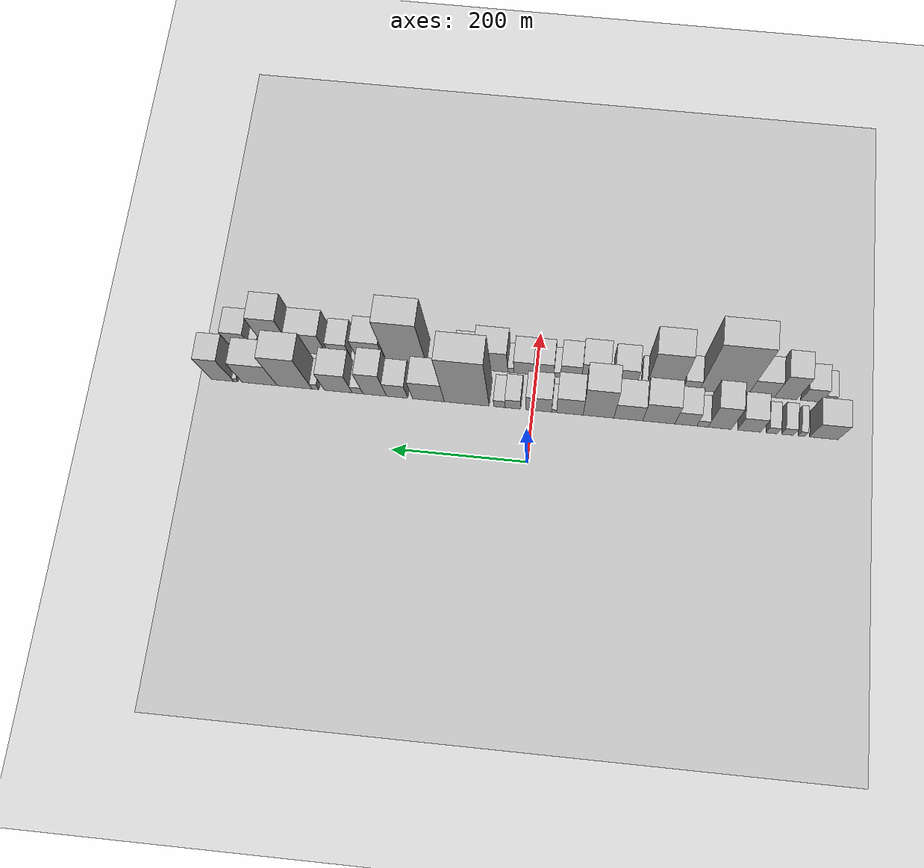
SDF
<sdf version="1.6">
 <world name="default">
  <include><name>ground_plane_1</name><uri>model://HANNAS_ground_plane</uri></include>
  <include>
   <name>ground_plane_2</name>
   <uri>model://HANNAS_ground_plane</uri>
   <pose>100 0 0  0 0 0</pose>
  </include>
  <model name="building_1">
   <static>1</static>
   <pose>100.0000 -429.0921 0 0.000000 0.000000 0.000000</pose>
   <link name="link">
    <pose>0 0 36.00 0 0 0</pose>
    <collision name="collision"><geometry><box><size>40.0000 41.8158 72.0000</size></box></geometry></collision>
    <visual name="visual">
     <cast_shadows>0</cast_shadows>
     <geometry><box><size>40.0000 41.8158 72.0000</size></box></geometry>
     <material>
      <script>
       <uri>model://HANNAS_wall/materials/scripts</uri>
       <uri>model://HANNAS_wall/materials/textures</uri>
       <name>vrc/HANNAS_wall</name>
      </script>
     </material>
    </visual>
   </link>
  </model>
  <model name="building_2">
   <static>1</static>
   <pose>100.0000 -396.2721 0 0.000000 0.000000 0.000000</pose>
   <link name="link">
    <pose>0 0 12.00 0 0 0</pose>
    <collision name="collision"><geometry><box><size>40.0000 9.8241 24.0000</size></box></geometry></collision>
    <visual name="visual">
     <cast_shadows>0</cast_shadows>
     <geometry><box><size>40.0000 9.8241 24.0000</size></box></geometry>
     <material>
      <script>
       <uri>model://HANNAS_wall/materials/scripts</uri>
       <uri>model://HANNAS_wall/materials/textures</uri>
       <name>vrc/HANNAS_wall</name>
      </script>
     </material>
    </visual>
   </link>
  </model>
  <model name="building_3">
   <static>1</static>
   <pose>100.0000 -375.5602 0 0.000000 0.000000 0.000000</pose>
   <link name="link">
    <pose>0 0 16.50 0 0 0</pose>
    <collision name="collision"><geometry><box><size>40.0000 17.5997 33.0000</size></box></geometry></collision>
    <visual name="visual">
     <cast_shadows>0</cast_shadows>
     <geometry><box><size>40.0000 17.5997 33.0000</size></box></geometry>
     <material>
      <script>
       <uri>model://HANNAS_wall/materials/scripts</uri>
       <uri>model://HANNAS_wall/materials/textures</uri>
       <name>vrc/HANNAS_wall</name>
      </script>
     </material>
    </visual>
   </link>
  </model>
  <model name="building_4">
   <static>1</static>
   <pose>100.0000 -352.4405 0 0.000000 0.000000 0.000000</pose>
   <link name="link">
    <pose>0 0 15.00 0 0 0</pose>
    <collision name="collision"><geometry><box><size>40.0000 16.6397 30.0000</size></box></geometry></collision>
    <visual name="visual">
     <cast_shadows>0</cast_shadows>
     <geometry><box><size>40.0000 16.6397 30.0000</size></box></geometry>
     <material>
      <script>
       <uri>model://HANNAS_wall/materials/scripts</uri>
       <uri>model://HANNAS_wall/materials/textures</uri>
       <name>vrc/HANNAS_wall</name>
      </script>
     </material>
    </visual>
   </link>
  </model>
  <model name="building_5">
   <static>1</static>
   <pose>100.0000 -319.1062 0 0.000000 0.000000 0.000000</pose>
   <link name="link">
    <pose>0 0 33.00 0 0 0</pose>
    <collision name="collision"><geometry><box><size>40.0000 34.0290 66.0000</size></box></geometry></collision>
    <visual name="visual">
     <cast_shadows>0</cast_shadows>
     <geometry><box><size>40.0000 34.0290 66.0000</size></box></geometry>
     <material>
      <script>
       <uri>model://HANNAS_wall/materials/scripts</uri>
       <uri>model://HANNAS_wall/materials/textures</uri>
       <name>vrc/HANNAS_wall</name>
      </script>
     </material>
    </visual>
   </link>
  </model>
  <model name="building_6">
   <static>1</static>
   <pose>100.0000 -275.9025 0 0.000000 0.000000 0.000000</pose>
   <link name="link">
    <pose>0 0 54.00 0 0 0</pose>
    <collision name="collision"><geometry><box><size>40.0000 34.3785 108.0000</size></box></geometry></collision>
    <visual name="visual">
     <cast_shadows>0</cast_shadows>
     <geometry><box><size>40.0000 34.3785 108.0000</size></box></geometry>
     <material>
      <script>
       <uri>model://HANNAS_wall/materials/scripts</uri>
       <uri>model://HANNAS_wall/materials/textures</uri>
       <name>vrc/HANNAS_wall</name>
      </script>
     </material>
    </visual>
   </link>
  </model>
  <model name="building_7">
   <static>1</static>
   <pose>100.0000 -250.4454 0 0.000000 0.000000 0.000000</pose>
   <link name="link">
    <pose>0 0 15.00 0 0 0</pose>
    <collision name="collision"><geometry><box><size>40.0000 16.5357 30.0000</size></box></geometry></collision>
    <visual name="visual">
     <cast_shadows>0</cast_shadows>
     <geometry><box><size>40.0000 16.5357 30.0000</size></box></geometry>
     <material>
      <script>
       <uri>model://HANNAS_wall/materials/scripts</uri>
       <uri>model://HANNAS_wall/materials/textures</uri>
       <name>vrc/HANNAS_wall</name>
      </script>
     </material>
    </visual>
   </link>
  </model>
  <model name="building_8">
   <static>1</static>
   <pose>100.0000 -226.0303 0 0.000000 0.000000 0.000000</pose>
   <link name="link">
    <pose>0 0 31.50 0 0 0</pose>
    <collision name="collision"><geometry><box><size>40.0000 32.2945 63.0000</size></box></geometry></collision>
    <visual name="visual">
     <cast_shadows>0</cast_shadows>
     <geometry><box><size>40.0000 32.2945 63.0000</size></box></geometry>
     <material>
      <script>
       <uri>model://HANNAS_wall/materials/scripts</uri>
       <uri>model://HANNAS_wall/materials/textures</uri>
       <name>vrc/HANNAS_wall</name>
      </script>
     </material>
    </visual>
   </link>
  </model>
  <model name="building_9">
   <static>1</static>
   <pose>100.0000 -186.0973 0 0.000000 0.000000 0.000000</pose>
   <link name="link">
    <pose>0 0 45.00 0 0 0</pose>
    <collision name="collision"><geometry><box><size>40.0000 47.5716 90.0000</size></box></geometry></collision>
    <visual name="visual">
     <cast_shadows>0</cast_shadows>
     <geometry><box><size>40.0000 47.5716 90.0000</size></box></geometry>
     <material>
      <script>
       <uri>model://HANNAS_wall/materials/scripts</uri>
       <uri>model://HANNAS_wall/materials/textures</uri>
       <name>vrc/HANNAS_wall</name>
      </script>
     </material>
    </visual>
   </link>
  </model>
  <model name="building_10">
   <static>1</static>
   <pose>100.0000 -140.9595 0 0.000000 0.000000 0.000000</pose>
   <link name="link">
    <pose>0 0 36.00 0 0 0</pose>
    <collision name="collision"><geometry><box><size>40.0000 42.7038 72.0000</size></box></geometry></collision>
    <visual name="visual">
     <cast_shadows>0</cast_shadows>
     <geometry><box><size>40.0000 42.7038 72.0000</size></box></geometry>
     <material>
      <script>
       <uri>model://HANNAS_wall/materials/scripts</uri>
       <uri>model://HANNAS_wall/materials/textures</uri>
       <name>vrc/HANNAS_wall</name>
      </script>
     </material>
    </visual>
   </link>
  </model>
  <model name="building_11">
   <static>1</static>
   <pose>100.0000 -96.8485 0 0.000000 0.000000 0.000000</pose>
   <link name="link">
    <pose>0 0 66.00 0 0 0</pose>
    <collision name="collision"><geometry><box><size>40.0000 45.5182 132.0000</size></box></geometry></collision>
    <visual name="visual">
     <cast_shadows>0</cast_shadows>
     <geometry><box><size>40.0000 45.5182 132.0000</size></box></geometry>
     <material>
      <script>
       <uri>model://HANNAS_wall/materials/scripts</uri>
       <uri>model://HANNAS_wall/materials/textures</uri>
       <name>vrc/HANNAS_wall</name>
      </script>
     </material>
    </visual>
   </link>
  </model>
  <model name="building_12">
   <static>1</static>
   <pose>100.0000 -54.3622 0 0.000000 0.000000 0.000000</pose>
   <link name="link">
    <pose>0 0 37.50 0 0 0</pose>
    <collision name="collision"><geometry><box><size>40.0000 39.4545 75.0000</size></box></geometry></collision>
    <visual name="visual">
     <cast_shadows>0</cast_shadows>
     <geometry><box><size>40.0000 39.4545 75.0000</size></box></geometry>
     <material>
      <script>
       <uri>model://HANNAS_wall/materials/scripts</uri>
       <uri>model://HANNAS_wall/materials/textures</uri>
       <name>vrc/HANNAS_wall</name>
      </script>
     </material>
    </visual>
   </link>
  </model>
  <model name="building_13">
   <static>1</static>
   <pose>100.0000 -31.0646 0 0.000000 0.000000 0.000000</pose>
   <link name="link">
    <pose>0 0 7.50 0 0 0</pose>
    <collision name="collision"><geometry><box><size>40.0000 7.1406 15.0000</size></box></geometry></collision>
    <visual name="visual">
     <cast_shadows>0</cast_shadows>
     <geometry><box><size>40.0000 7.1406 15.0000</size></box></geometry>
     <material>
      <script>
       <uri>model://HANNAS_wall/materials/scripts</uri>
       <uri>model://HANNAS_wall/materials/textures</uri>
       <name>vrc/HANNAS_wall</name>
      </script>
     </material>
    </visual>
   </link>
  </model>
  <model name="building_14">
   <static>1</static>
   <pose>100.0000 -8.3946 0 0.000000 0.000000 0.000000</pose>
   <link name="link">
    <pose>0 0 33.00 0 0 0</pose>
    <collision name="collision"><geometry><box><size>40.0000 38.1993 66.0000</size></box></geometry></collision>
    <visual name="visual">
     <cast_shadows>0</cast_shadows>
     <geometry><box><size>40.0000 38.1993 66.0000</size></box></geometry>
     <material>
      <script>
       <uri>model://HANNAS_wall/materials/scripts</uri>
       <uri>model://HANNAS_wall/materials/textures</uri>
       <name>vrc/HANNAS_wall</name>
      </script>
     </material>
    </visual>
   </link>
  </model>
  <model name="building_15">
   <static>1</static>
   <pose>100.0000 30.2016 0 0.000000 0.000000 0.000000</pose>
   <link name="link">
    <pose>0 0 21.00 0 0 0</pose>
    <collision name="collision"><geometry><box><size>40.0000 22.9932 42.0000</size></box></geometry></collision>
    <visual name="visual">
     <cast_shadows>0</cast_shadows>
     <geometry><box><size>40.0000 22.9932 42.0000</size></box></geometry>
     <material>
      <script>
       <uri>model://HANNAS_wall/materials/scripts</uri>
       <uri>model://HANNAS_wall/materials/textures</uri>
       <name>vrc/HANNAS_wall</name>
      </script>
     </material>
    </visual>
   </link>
  </model>
  <model name="building_16">
   <static>1</static>
   <pose>100.0000 50.1618 0 0.000000 0.000000 0.000000</pose>
   <link name="link">
    <pose>0 0 16.50 0 0 0</pose>
    <collision name="collision"><geometry><box><size>40.0000 16.9273 33.0000</size></box></geometry></collision>
    <visual name="visual">
     <cast_shadows>0</cast_shadows>
     <geometry><box><size>40.0000 16.9273 33.0000</size></box></geometry>
     <material>
      <script>
       <uri>model://HANNAS_wall/materials/scripts</uri>
       <uri>model://HANNAS_wall/materials/textures</uri>
       <name>vrc/HANNAS_wall</name>
      </script>
     </material>
    </visual>
   </link>
  </model>
  <model name="building_17">
   <static>1</static>
   <pose>100.0000 99.0266 0 0.000000 0.000000 0.000000</pose>
   <link name="link">
    <pose>0 0 100.50 0 0 0</pose>
    <collision name="collision"><geometry><box><size>40.0000 66.8022 201.0000</size></box></geometry></collision>
    <visual name="visual">
     <cast_shadows>0</cast_shadows>
     <geometry><box><size>40.0000 66.8022 201.0000</size></box></geometry>
     <material>
      <script>
       <uri>model://HANNAS_wall/materials/scripts</uri>
       <uri>model://HANNAS_wall/materials/textures</uri>
       <name>vrc/HANNAS_wall</name>
      </script>
     </material>
    </visual>
   </link>
  </model>
  <model name="building_18">
   <static>1</static>
   <pose>100.0000 156.2179 0 0.000000 0.000000 0.000000</pose>
   <link name="link">
    <pose>0 0 40.50 0 0 0</pose>
    <collision name="collision"><geometry><box><size>40.0000 47.5804 81.0000</size></box></geometry></collision>
    <visual name="visual">
     <cast_shadows>0</cast_shadows>
     <geometry><box><size>40.0000 47.5804 81.0000</size></box></geometry>
     <material>
      <script>
       <uri>model://HANNAS_wall/materials/scripts</uri>
       <uri>model://HANNAS_wall/materials/textures</uri>
       <name>vrc/HANNAS_wall</name>
      </script>
     </material>
    </visual>
   </link>
  </model>
  <model name="building_19">
   <static>1</static>
   <pose>100.0000 203.0638 0 0.000000 0.000000 0.000000</pose>
   <link name="link">
    <pose>0 0 30.00 0 0 0</pose>
    <collision name="collision"><geometry><box><size>40.0000 32.1115 60.0000</size></box></geometry></collision>
    <visual name="visual">
     <cast_shadows>0</cast_shadows>
     <geometry><box><size>40.0000 32.1115 60.0000</size></box></geometry>
     <material>
      <script>
       <uri>model://HANNAS_wall/materials/scripts</uri>
       <uri>model://HANNAS_wall/materials/textures</uri>
       <name>vrc/HANNAS_wall</name>
      </script>
     </material>
    </visual>
   </link>
  </model>
  <model name="building_20">
   <static>1</static>
   <pose>100.0000 236.6242 0 0.000000 0.000000 0.000000</pose>
   <link name="link">
    <pose>0 0 49.50 0 0 0</pose>
    <collision name="collision"><geometry><box><size>40.0000 35.0094 99.0000</size></box></geometry></collision>
    <visual name="visual">
     <cast_shadows>0</cast_shadows>
     <geometry><box><size>40.0000 35.0094 99.0000</size></box></geometry>
     <material>
      <script>
       <uri>model://HANNAS_wall/materials/scripts</uri>
       <uri>model://HANNAS_wall/materials/textures</uri>
       <name>vrc/HANNAS_wall</name>
      </script>
     </material>
    </visual>
   </link>
  </model>
  <model name="building_21">
   <static>1</static>
   <pose>100.0000 262.3423 0 0.000000 0.000000 0.000000</pose>
   <link name="link">
    <pose>0 0 15.00 0 0 0</pose>
    <collision name="collision"><geometry><box><size>40.0000 16.4268 30.0000</size></box></geometry></collision>
    <visual name="visual">
     <cast_shadows>0</cast_shadows>
     <geometry><box><size>40.0000 16.4268 30.0000</size></box></geometry>
     <material>
      <script>
       <uri>model://HANNAS_wall/materials/scripts</uri>
       <uri>model://HANNAS_wall/materials/textures</uri>
       <name>vrc/HANNAS_wall</name>
      </script>
     </material>
    </visual>
   </link>
  </model>
  <model name="building_22">
   <static>1</static>
   <pose>100.0000 291.4693 0 0.000000 0.000000 0.000000</pose>
   <link name="link">
    <pose>0 0 40.50 0 0 0</pose>
    <collision name="collision"><geometry><box><size>40.0000 41.8271 81.0000</size></box></geometry></collision>
    <visual name="visual">
     <cast_shadows>0</cast_shadows>
     <geometry><box><size>40.0000 41.8271 81.0000</size></box></geometry>
     <material>
      <script>
       <uri>model://HANNAS_wall/materials/scripts</uri>
       <uri>model://HANNAS_wall/materials/textures</uri>
       <name>vrc/HANNAS_wall</name>
      </script>
     </material>
    </visual>
   </link>
  </model>
  <model name="building_23">
   <static>1</static>
   <pose>100.0000 325.5681 0 0.000000 0.000000 0.000000</pose>
   <link name="link">
    <pose>0 0 12.00 0 0 0</pose>
    <collision name="collision"><geometry><box><size>40.0000 10.3706 24.0000</size></box></geometry></collision>
    <visual name="visual">
     <cast_shadows>0</cast_shadows>
     <geometry><box><size>40.0000 10.3706 24.0000</size></box></geometry>
     <material>
      <script>
       <uri>model://HANNAS_wall/materials/scripts</uri>
       <uri>model://HANNAS_wall/materials/textures</uri>
       <name>vrc/HANNAS_wall</name>
      </script>
     </material>
    </visual>
   </link>
  </model>
  <model name="building_24">
   <static>1</static>
   <pose>100.0000 356.8630 0 0.000000 0.000000 0.000000</pose>
   <link name="link">
    <pose>0 0 67.50 0 0 0</pose>
    <collision name="collision"><geometry><box><size>40.0000 52.2193 135.0000</size></box></geometry></collision>
    <visual name="visual">
     <cast_shadows>0</cast_shadows>
     <geometry><box><size>40.0000 52.2193 135.0000</size></box></geometry>
     <material>
      <script>
       <uri>model://HANNAS_wall/materials/scripts</uri>
       <uri>model://HANNAS_wall/materials/textures</uri>
       <name>vrc/HANNAS_wall</name>
      </script>
     </material>
    </visual>
   </link>
  </model>
  <model name="building_25">
   <static>1</static>
   <pose>100.0000 409.4507 0 0.000000 0.000000 0.000000</pose>
   <link name="link">
    <pose>0 0 45.00 0 0 0</pose>
    <collision name="collision"><geometry><box><size>40.0000 52.9560 90.0000</size></box></geometry></collision>
    <visual name="visual">
     <cast_shadows>0</cast_shadows>
     <geometry><box><size>40.0000 52.9560 90.0000</size></box></geometry>
     <material>
      <script>
       <uri>model://HANNAS_wall/materials/scripts</uri>
       <uri>model://HANNAS_wall/materials/textures</uri>
       <name>vrc/HANNAS_wall</name>
      </script>
     </material>
    </visual>
   </link>
  </model>
  <model name="building_26">
   <static>1</static>
   <pose>100.0000 445.1464 0 0.000000 0.000000 0.000000</pose>
   <link name="link">
    <pose>0 0 7.50 0 0 0</pose>
    <collision name="collision"><geometry><box><size>40.0000 6.4355 15.0000</size></box></geometry></collision>
    <visual name="visual">
     <cast_shadows>0</cast_shadows>
     <geometry><box><size>40.0000 6.4355 15.0000</size></box></geometry>
     <material>
      <script>
       <uri>model://HANNAS_wall/materials/scripts</uri>
       <uri>model://HANNAS_wall/materials/textures</uri>
       <name>vrc/HANNAS_wall</name>
      </script>
     </material>
    </visual>
   </link>
  </model>
  <model name="building_27">
   <static>1</static>
   <pose>100.0000 465.2666 0 0.000000 0.000000 0.000000</pose>
   <link name="link">
    <pose>0 0 49.50 0 0 0</pose>
    <collision name="collision"><geometry><box><size>40.0000 33.8049 99.0000</size></box></geometry></collision>
    <visual name="visual">
     <cast_shadows>0</cast_shadows>
     <geometry><box><size>40.0000 33.8049 99.0000</size></box></geometry>
     <material>
      <script>
       <uri>model://HANNAS_wall/materials/scripts</uri>
       <uri>model://HANNAS_wall/materials/textures</uri>
       <name>vrc/HANNAS_wall</name>
      </script>
     </material>
    </visual>
   </link>
  </model>
  <model name="building_28">
   <static>1</static>
   <pose>155.0000 -432.4684 0 0.000000 0.000000 0.000000</pose>
   <link name="link">
    <pose>0 0 16.50 0 0 0</pose>
    <collision name="collision"><geometry><box><size>40.0000 17.0632 33.0000</size></box></geometry></collision>
    <visual name="visual">
     <cast_shadows>0</cast_shadows>
     <geometry><box><size>40.0000 17.0632 33.0000</size></box></geometry>
     <material>
      <script>
       <uri>model://HANNAS_wall/materials/scripts</uri>
       <uri>model://HANNAS_wall/materials/textures</uri>
       <name>vrc/HANNAS_wall</name>
      </script>
     </material>
    </visual>
   </link>
  </model>
  <model name="building_29">
   <static>1</static>
   <pose>155.0000 -408.6887 0 0.000000 0.000000 0.000000</pose>
   <link name="link">
    <pose>0 0 28.50 0 0 0</pose>
    <collision name="collision"><geometry><box><size>40.0000 30.4962 57.0000</size></box></geometry></collision>
    <visual name="visual">
     <cast_shadows>0</cast_shadows>
     <geometry><box><size>40.0000 30.4962 57.0000</size></box></geometry>
     <material>
      <script>
       <uri>model://HANNAS_wall/materials/scripts</uri>
       <uri>model://HANNAS_wall/materials/textures</uri>
       <name>vrc/HANNAS_wall</name>
      </script>
     </material>
    </visual>
   </link>
  </model>
  <model name="building_30">
   <static>1</static>
   <pose>155.0000 -370.6630 0 0.000000 0.000000 0.000000</pose>
   <link name="link">
    <pose>0 0 52.50 0 0 0</pose>
    <collision name="collision"><geometry><box><size>40.0000 33.5551 105.0000</size></box></geometry></collision>
    <visual name="visual">
     <cast_shadows>0</cast_shadows>
     <geometry><box><size>40.0000 33.5551 105.0000</size></box></geometry>
     <material>
      <script>
       <uri>model://HANNAS_wall/materials/scripts</uri>
       <uri>model://HANNAS_wall/materials/textures</uri>
       <name>vrc/HANNAS_wall</name>
      </script>
     </material>
    </visual>
   </link>
  </model>
  <model name="building_31">
   <static>1</static>
   <pose>155.0000 -334.3735 0 0.000000 0.000000 0.000000</pose>
   <link name="link">
    <pose>0 0 36.00 0 0 0</pose>
    <collision name="collision"><geometry><box><size>40.0000 39.0240 72.0000</size></box></geometry></collision>
    <visual name="visual">
     <cast_shadows>0</cast_shadows>
     <geometry><box><size>40.0000 39.0240 72.0000</size></box></geometry>
     <material>
      <script>
       <uri>model://HANNAS_wall/materials/scripts</uri>
       <uri>model://HANNAS_wall/materials/textures</uri>
       <name>vrc/HANNAS_wall</name>
      </script>
     </material>
    </visual>
   </link>
  </model>
  <model name="building_32">
   <static>1</static>
   <pose>155.0000 -278.8919 0 0.000000 0.000000 0.000000</pose>
   <link name="link">
    <pose>0 0 105.00 0 0 0</pose>
    <collision name="collision"><geometry><box><size>40.0000 71.9391 210.0000</size></box></geometry></collision>
    <visual name="visual">
     <cast_shadows>0</cast_shadows>
     <geometry><box><size>40.0000 71.9391 210.0000</size></box></geometry>
     <material>
      <script>
       <uri>model://HANNAS_wall/materials/scripts</uri>
       <uri>model://HANNAS_wall/materials/textures</uri>
       <name>vrc/HANNAS_wall</name>
      </script>
     </material>
    </visual>
   </link>
  </model>
  <model name="building_33">
   <static>1</static>
   <pose>155.0000 -230.7251 0 0.000000 0.000000 0.000000</pose>
   <link name="link">
    <pose>0 0 21.00 0 0 0</pose>
    <collision name="collision"><geometry><box><size>40.0000 24.3945 42.0000</size></box></geometry></collision>
    <visual name="visual">
     <cast_shadows>0</cast_shadows>
     <geometry><box><size>40.0000 24.3945 42.0000</size></box></geometry>
     <material>
      <script>
       <uri>model://HANNAS_wall/materials/scripts</uri>
       <uri>model://HANNAS_wall/materials/textures</uri>
       <name>vrc/HANNAS_wall</name>
      </script>
     </material>
    </visual>
   </link>
  </model>
  <model name="building_34">
   <static>1</static>
   <pose>155.0000 -189.9824 0 0.000000 0.000000 0.000000</pose>
   <link name="link">
    <pose>0 0 75.00 0 0 0</pose>
    <collision name="collision"><geometry><box><size>40.0000 51.0908 150.0000</size></box></geometry></collision>
    <visual name="visual">
     <cast_shadows>0</cast_shadows>
     <geometry><box><size>40.0000 51.0908 150.0000</size></box></geometry>
     <material>
      <script>
       <uri>model://HANNAS_wall/materials/scripts</uri>
       <uri>model://HANNAS_wall/materials/textures</uri>
       <name>vrc/HANNAS_wall</name>
      </script>
     </material>
    </visual>
   </link>
  </model>
  <model name="building_35">
   <static>1</static>
   <pose>155.0000 -160.1794 0 0.000000 0.000000 0.000000</pose>
   <link name="link">
    <pose>0 0 10.50 0 0 0</pose>
    <collision name="collision"><geometry><box><size>40.0000 8.5153 21.0000</size></box></geometry></collision>
    <visual name="visual">
     <cast_shadows>0</cast_shadows>
     <geometry><box><size>40.0000 8.5153 21.0000</size></box></geometry>
     <material>
      <script>
       <uri>model://HANNAS_wall/materials/scripts</uri>
       <uri>model://HANNAS_wall/materials/textures</uri>
       <name>vrc/HANNAS_wall</name>
      </script>
     </material>
    </visual>
   </link>
  </model>
  <model name="building_36">
   <static>1</static>
   <pose>155.0000 -131.8410 0 0.000000 0.000000 0.000000</pose>
   <link name="link">
    <pose>0 0 31.50 0 0 0</pose>
    <collision name="collision"><geometry><box><size>40.0000 36.1615 63.0000</size></box></geometry></collision>
    <visual name="visual">
     <cast_shadows>0</cast_shadows>
     <geometry><box><size>40.0000 36.1615 63.0000</size></box></geometry>
     <material>
      <script>
       <uri>model://HANNAS_wall/materials/scripts</uri>
       <uri>model://HANNAS_wall/materials/textures</uri>
       <name>vrc/HANNAS_wall</name>
      </script>
     </material>
    </visual>
   </link>
  </model>
  <model name="building_37">
   <static>1</static>
   <pose>155.0000 -86.7872 0 0.000000 0.000000 0.000000</pose>
   <link name="link">
    <pose>0 0 36.00 0 0 0</pose>
    <collision name="collision"><geometry><box><size>40.0000 39.9462 72.0000</size></box></geometry></collision>
    <visual name="visual">
     <cast_shadows>0</cast_shadows>
     <geometry><box><size>40.0000 39.9462 72.0000</size></box></geometry>
     <material>
      <script>
       <uri>model://HANNAS_wall/materials/scripts</uri>
       <uri>model://HANNAS_wall/materials/textures</uri>
       <name>vrc/HANNAS_wall</name>
      </script>
     </material>
    </visual>
   </link>
  </model>
  <model name="building_38">
   <static>1</static>
   <pose>155.0000 -51.1200 0 0.000000 0.000000 0.000000</pose>
   <link name="link">
    <pose>0 0 28.50 0 0 0</pose>
    <collision name="collision"><geometry><box><size>40.0000 31.3882 57.0000</size></box></geometry></collision>
    <visual name="visual">
     <cast_shadows>0</cast_shadows>
     <geometry><box><size>40.0000 31.3882 57.0000</size></box></geometry>
     <material>
      <script>
       <uri>model://HANNAS_wall/materials/scripts</uri>
       <uri>model://HANNAS_wall/materials/textures</uri>
       <name>vrc/HANNAS_wall</name>
      </script>
     </material>
    </visual>
   </link>
  </model>
  <model name="building_39">
   <static>1</static>
   <pose>155.0000 -30.4448 0 0.000000 0.000000 0.000000</pose>
   <link name="link">
    <pose>0 0 10.50 0 0 0</pose>
    <collision name="collision"><geometry><box><size>40.0000 9.9621 21.0000</size></box></geometry></collision>
    <visual name="visual">
     <cast_shadows>0</cast_shadows>
     <geometry><box><size>40.0000 9.9621 21.0000</size></box></geometry>
     <material>
      <script>
       <uri>model://HANNAS_wall/materials/scripts</uri>
       <uri>model://HANNAS_wall/materials/textures</uri>
       <name>vrc/HANNAS_wall</name>
      </script>
     </material>
    </visual>
   </link>
  </model>
  <model name="building_40">
   <static>1</static>
   <pose>155.0000 -10.3241 0 0.000000 0.000000 0.000000</pose>
   <link name="link">
    <pose>0 0 27.00 0 0 0</pose>
    <collision name="collision"><geometry><box><size>40.0000 30.2793 54.0000</size></box></geometry></collision>
    <visual name="visual">
     <cast_shadows>0</cast_shadows>
     <geometry><box><size>40.0000 30.2793 54.0000</size></box></geometry>
     <material>
      <script>
       <uri>model://HANNAS_wall/materials/scripts</uri>
       <uri>model://HANNAS_wall/materials/textures</uri>
       <name>vrc/HANNAS_wall</name>
      </script>
     </material>
    </visual>
   </link>
  </model>
  <model name="building_41">
   <static>1</static>
   <pose>155.0000 19.6512 0 0.000000 0.000000 0.000000</pose>
   <link name="link">
    <pose>0 0 27.00 0 0 0</pose>
    <collision name="collision"><geometry><box><size>40.0000 29.6713 54.0000</size></box></geometry></collision>
    <visual name="visual">
     <cast_shadows>0</cast_shadows>
     <geometry><box><size>40.0000 29.6713 54.0000</size></box></geometry>
     <material>
      <script>
       <uri>model://HANNAS_wall/materials/scripts</uri>
       <uri>model://HANNAS_wall/materials/textures</uri>
       <name>vrc/HANNAS_wall</name>
      </script>
     </material>
    </visual>
   </link>
  </model>
  <model name="building_42">
   <static>1</static>
   <pose>155.0000 39.1016 0 0.000000 0.000000 0.000000</pose>
   <link name="link">
    <pose>0 0 10.50 0 0 0</pose>
    <collision name="collision"><geometry><box><size>40.0000 9.2296 21.0000</size></box></geometry></collision>
    <visual name="visual">
     <cast_shadows>0</cast_shadows>
     <geometry><box><size>40.0000 9.2296 21.0000</size></box></geometry>
     <material>
      <script>
       <uri>model://HANNAS_wall/materials/scripts</uri>
       <uri>model://HANNAS_wall/materials/textures</uri>
       <name>vrc/HANNAS_wall</name>
      </script>
     </material>
    </visual>
   </link>
  </model>
  <model name="building_43">
   <static>1</static>
   <pose>155.0000 67.7313 0 0.000000 0.000000 0.000000</pose>
   <link name="link">
    <pose>0 0 42.00 0 0 0</pose>
    <collision name="collision"><geometry><box><size>40.0000 48.0297 84.0000</size></box></geometry></collision>
    <visual name="visual">
     <cast_shadows>0</cast_shadows>
     <geometry><box><size>40.0000 48.0297 84.0000</size></box></geometry>
     <material>
      <script>
       <uri>model://HANNAS_wall/materials/scripts</uri>
       <uri>model://HANNAS_wall/materials/textures</uri>
       <name>vrc/HANNAS_wall</name>
      </script>
     </material>
    </visual>
   </link>
  </model>
  <model name="building_44">
   <static>1</static>
   <pose>155.0000 106.8159 0 0.000000 0.000000 0.000000</pose>
   <link name="link">
    <pose>0 0 27.00 0 0 0</pose>
    <collision name="collision"><geometry><box><size>40.0000 30.1397 54.0000</size></box></geometry></collision>
    <visual name="visual">
     <cast_shadows>0</cast_shadows>
     <geometry><box><size>40.0000 30.1397 54.0000</size></box></geometry>
     <material>
      <script>
       <uri>model://HANNAS_wall/materials/scripts</uri>
       <uri>model://HANNAS_wall/materials/textures</uri>
       <name>vrc/HANNAS_wall</name>
      </script>
     </material>
    </visual>
   </link>
  </model>
  <model name="building_45">
   <static>1</static>
   <pose>155.0000 139.8588 0 0.000000 0.000000 0.000000</pose>
   <link name="link">
    <pose>0 0 15.00 0 0 0</pose>
    <collision name="collision"><geometry><box><size>40.0000 17.9460 30.0000</size></box></geometry></collision>
    <visual name="visual">
     <cast_shadows>0</cast_shadows>
     <geometry><box><size>40.0000 17.9460 30.0000</size></box></geometry>
     <material>
      <script>
       <uri>model://HANNAS_wall/materials/scripts</uri>
       <uri>model://HANNAS_wall/materials/textures</uri>
       <name>vrc/HANNAS_wall</name>
      </script>
     </material>
    </visual>
   </link>
  </model>
  <model name="building_46">
   <static>1</static>
   <pose>155.0000 152.4405 0 0.000000 0.000000 0.000000</pose>
   <link name="link">
    <pose>0 0 9.00 0 0 0</pose>
    <collision name="collision"><geometry><box><size>40.0000 7.2175 18.0000</size></box></geometry></collision>
    <visual name="visual">
     <cast_shadows>0</cast_shadows>
     <geometry><box><size>40.0000 7.2175 18.0000</size></box></geometry>
     <material>
      <script>
       <uri>model://HANNAS_wall/materials/scripts</uri>
       <uri>model://HANNAS_wall/materials/textures</uri>
       <name>vrc/HANNAS_wall</name>
      </script>
     </material>
    </visual>
   </link>
  </model>
  <model name="building_47">
   <static>1</static>
   <pose>155.0000 196.5517 0 0.000000 0.000000 0.000000</pose>
   <link name="link">
    <pose>0 0 84.00 0 0 0</pose>
    <collision name="collision"><geometry><box><size>40.0000 61.0048 168.0000</size></box></geometry></collision>
    <visual name="visual">
     <cast_shadows>0</cast_shadows>
     <geometry><box><size>40.0000 61.0048 168.0000</size></box></geometry>
     <material>
      <script>
       <uri>model://HANNAS_wall/materials/scripts</uri>
       <uri>model://HANNAS_wall/materials/textures</uri>
       <name>vrc/HANNAS_wall</name>
      </script>
     </material>
    </visual>
   </link>
  </model>
  <model name="building_48">
   <static>1</static>
   <pose>155.0000 251.0046 0 0.000000 0.000000 0.000000</pose>
   <link name="link">
    <pose>0 0 37.50 0 0 0</pose>
    <collision name="collision"><geometry><box><size>40.0000 41.9009 75.0000</size></box></geometry></collision>
    <visual name="visual">
     <cast_shadows>0</cast_shadows>
     <geometry><box><size>40.0000 41.9009 75.0000</size></box></geometry>
     <material>
      <script>
       <uri>model://HANNAS_wall/materials/scripts</uri>
       <uri>model://HANNAS_wall/materials/textures</uri>
       <name>vrc/HANNAS_wall</name>
      </script>
     </material>
    </visual>
   </link>
  </model>
  <model name="building_49">
   <static>1</static>
   <pose>155.0000 296.3832 0 0.000000 0.000000 0.000000</pose>
   <link name="link">
    <pose>0 0 27.00 0 0 0</pose>
    <collision name="collision"><geometry><box><size>40.0000 30.8562 54.0000</size></box></geometry></collision>
    <visual name="visual">
     <cast_shadows>0</cast_shadows>
     <geometry><box><size>40.0000 30.8562 54.0000</size></box></geometry>
     <material>
      <script>
       <uri>model://HANNAS_wall/materials/scripts</uri>
       <uri>model://HANNAS_wall/materials/textures</uri>
       <name>vrc/HANNAS_wall</name>
      </script>
     </material>
    </visual>
   </link>
  </model>
  <model name="building_50">
   <static>1</static>
   <pose>155.0000 341.4058 0 0.000000 0.000000 0.000000</pose>
   <link name="link">
    <pose>0 0 42.00 0 0 0</pose>
    <collision name="collision"><geometry><box><size>40.0000 49.1891 84.0000</size></box></geometry></collision>
    <visual name="visual">
     <cast_shadows>0</cast_shadows>
     <geometry><box><size>40.0000 49.1891 84.0000</size></box></geometry>
     <material>
      <script>
       <uri>model://HANNAS_wall/materials/scripts</uri>
       <uri>model://HANNAS_wall/materials/textures</uri>
       <name>vrc/HANNAS_wall</name>
      </script>
     </material>
    </visual>
   </link>
  </model>
  <model name="building_51">
   <static>1</static>
   <pose>155.0000 386.9790 0 0.000000 0.000000 0.000000</pose>
   <link name="link">
    <pose>0 0 67.50 0 0 0</pose>
    <collision name="collision"><geometry><box><size>40.0000 41.9571 135.0000</size></box></geometry></collision>
    <visual name="visual">
     <cast_shadows>0</cast_shadows>
     <geometry><box><size>40.0000 41.9571 135.0000</size></box></geometry>
     <material>
      <script>
       <uri>model://HANNAS_wall/materials/scripts</uri>
       <uri>model://HANNAS_wall/materials/textures</uri>
       <name>vrc/HANNAS_wall</name>
      </script>
     </material>
    </visual>
   </link>
  </model>
  <model name="building_52">
   <static>1</static>
   <pose>155.0000 413.1838 0 0.000000 0.000000 0.000000</pose>
   <link name="link">
    <pose>0 0 10.50 0 0 0</pose>
    <collision name="collision"><geometry><box><size>40.0000 10.4527 21.0000</size></box></geometry></collision>
    <visual name="visual">
     <cast_shadows>0</cast_shadows>
     <geometry><box><size>40.0000 10.4527 21.0000</size></box></geometry>
     <material>
      <script>
       <uri>model://HANNAS_wall/materials/scripts</uri>
       <uri>model://HANNAS_wall/materials/textures</uri>
       <name>vrc/HANNAS_wall</name>
      </script>
     </material>
    </visual>
   </link>
  </model>
  <model name="building_53">
   <static>1</static>
   <pose>155.0000 424.9105 0 0.000000 0.000000 0.000000</pose>
   <link name="link">
    <pose>0 0 13.50 0 0 0</pose>
    <collision name="collision"><geometry><box><size>40.0000 13.0006 27.0000</size></box></geometry></collision>
    <visual name="visual">
     <cast_shadows>0</cast_shadows>
     <geometry><box><size>40.0000 13.0006 27.0000</size></box></geometry>
     <material>
      <script>
       <uri>model://HANNAS_wall/materials/scripts</uri>
       <uri>model://HANNAS_wall/materials/textures</uri>
       <name>vrc/HANNAS_wall</name>
      </script>
     </material>
    </visual>
   </link>
  </model>
  <model name="building_54">
   <static>1</static>
   <pose>155.0000 448.5824 0 0.000000 0.000000 0.000000</pose>
   <link name="link">
    <pose>0 0 30.00 0 0 0</pose>
    <collision name="collision"><geometry><box><size>40.0000 34.3432 60.0000</size></box></geometry></collision>
    <visual name="visual">
     <cast_shadows>0</cast_shadows>
     <geometry><box><size>40.0000 34.3432 60.0000</size></box></geometry>
     <material>
      <script>
       <uri>model://HANNAS_wall/materials/scripts</uri>
       <uri>model://HANNAS_wall/materials/textures</uri>
       <name>vrc/HANNAS_wall</name>
      </script>
     </material>
    </visual>
   </link>
  </model>
 </world>
</sdf>
